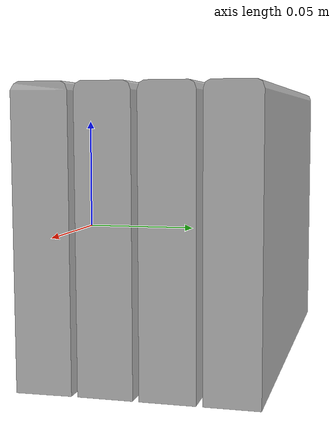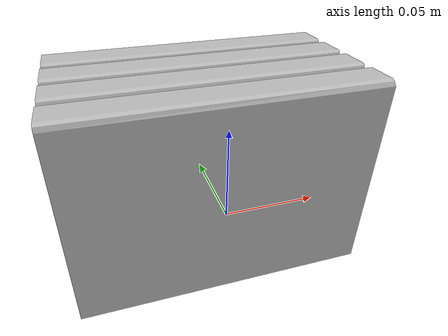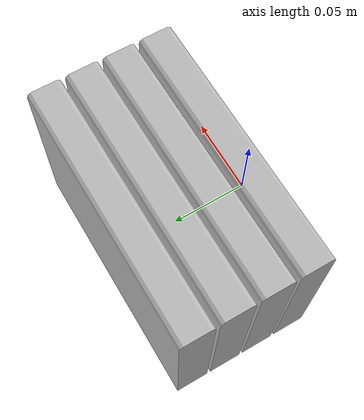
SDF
<?xml version="1.0" ?>
<sdf version="1.4">
  <model name="shelf2_book2_h4">
    <link name="body">
      <pose>0 0 0 0 0 0</pose>
      <inertial>
        <pose>   0.002703   0.048771   0.003927 0 0 0</pose>
        <mass>0.5</mass>
        <inertia>
          <ixx>0.01</ixx>
          <ixy>0</ixy>
          <ixz>0</ixz>
          <iyy>0.01</iyy>
          <iyz>0</iyz>
          <izz>0.01</izz>
        </inertia>
      </inertial>
      <collision name="collision">
        <geometry>
          <mesh>
            <uri>model://bookshelf/shelf2_items/book2_h4/book2_h4.dae</uri>
          </mesh>
        </geometry>
      </collision>
      <visual name="visual">
        <geometry>
          <mesh>
            <uri>model://bookshelf/shelf2_items/book2_h4/book2_h4.dae</uri>
          </mesh>
        </geometry>
      </visual>
    </link>
  </model>
</sdf>
